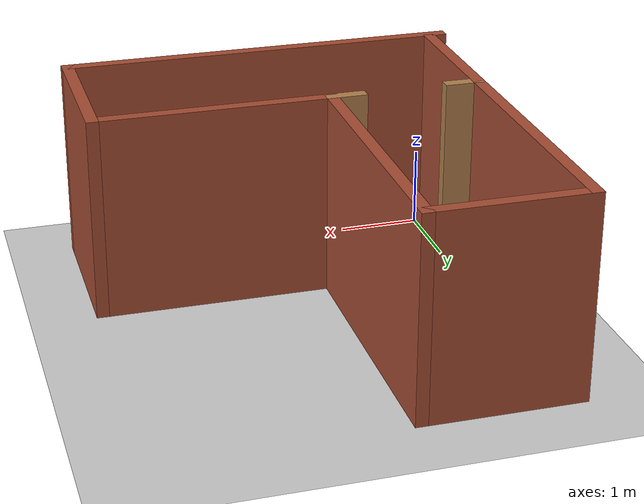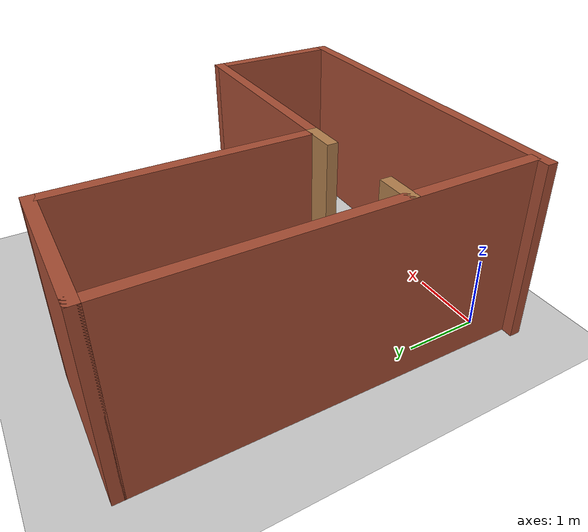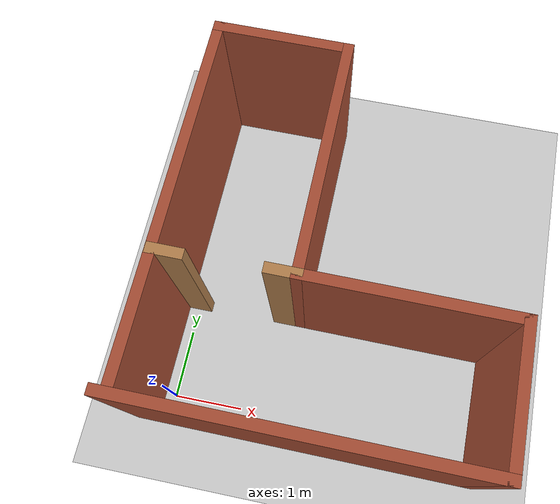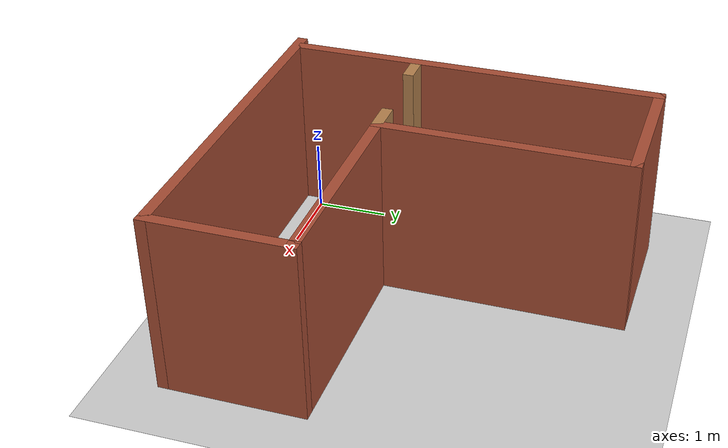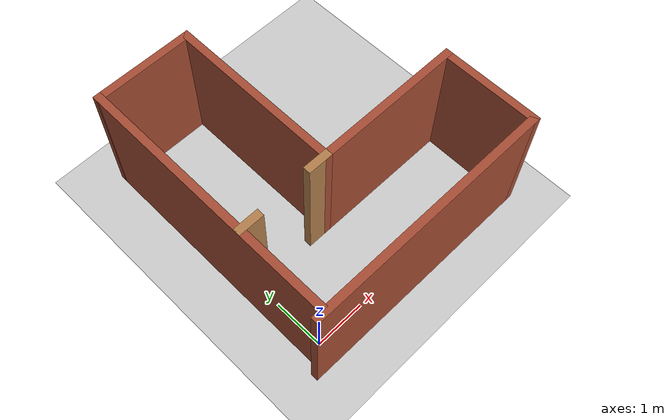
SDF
<sdf version="1.7">
 <world name="default">
  <light name="sun" type="directional">
   <pose>0 0 10 0 -0 0</pose>
   <diffuse>0.8 0.8 0.8 1</diffuse>
   <specular>0.2 0.2 0.2 1</specular>
   <attenuation>
    <range>1000</range>
    <constant>0.9</constant>
    <linear>0.01</linear>
    <quadratic>0.001</quadratic>
   </attenuation>
   <direction>-0.5 0.1 -0.9</direction>
   <spot><inner_angle>0</inner_angle><outer_angle>0</outer_angle><falloff>0</falloff></spot>
  </light>
  <model name="ground_plane">
   <static>1</static>
   <link name="link">
    <collision name="collision">
     <geometry><plane><normal>0 0 1</normal><size>100 100</size></plane></geometry>
     <surface>
      <contact><collide_bitmask>65535</collide_bitmask></contact>
      <friction><ode><mu>100</mu><mu2>50</mu2></ode></friction>
     </surface>
    </collision>
    <visual name="visual">
     <cast_shadows>0</cast_shadows>
     <geometry><plane><normal>0 0 1</normal><size>100 100</size></plane></geometry>
     <material>
      <script><uri>file://media/materials/scripts/gazebo.material</uri><name>Gazebo/Grey</name></script>
     </material>
    </visual>
   </link>
  </model>
  <gravity>0 0 -9.8</gravity>
  <magnetic_field>6e-06 2.3e-05 -4.2e-05</magnetic_field>
  <atmosphere type="adiabatic"/>
  <physics type="ode">
   <max_step_size>0.001</max_step_size>
   <real_time_factor>1</real_time_factor>
   <real_time_update_rate>1000</real_time_update_rate>
  </physics>
  <scene><ambient>0.4 0.4 0.4 1</ambient><background>0.7 0.7 0.7 1</background><shadows>1</shadows></scene>
  <spherical_coordinates>
   <surface_model>EARTH_WGS84</surface_model>
   <latitude_deg>0</latitude_deg>
   <longitude_deg>0</longitude_deg>
   <elevation>0</elevation>
   <heading_deg>0</heading_deg>
  </spherical_coordinates>
  <model name="wall4_new">
   <pose>1.77122 2.24113 0 0 -0 1.56565</pose>
   <link name="Wall_11">
    <collision name="Wall_11_Collision">
     <geometry><box><size>0.5 0.15 2.5</size></box></geometry>
     <pose>0 0 1.25 0 -0 0</pose>
    </collision>
    <visual name="Wall_11_Visual">
     <pose>0 0 1.25 0 -0 0</pose>
     <geometry><box><size>0.5 0.15 2.5</size></box></geometry>
     <material>
      <script><uri>file://media/materials/scripts/gazebo.material</uri><name>Gazebo/Wood</name></script>
      <ambient>1 1 1 1</ambient>
     </material>
     <meta><layer>0</layer></meta>
    </visual>
    <pose>-0.75 0.3225 0 0 -0 1.5708</pose>
   </link>
   <link name="Wall_2">
    <collision name="Wall_2_Collision">
     <geometry><box><size>5.25 0.15 2.5</size></box></geometry>
     <pose>0 0 1.25 0 -0 0</pose>
    </collision>
    <visual name="Wall_2_Visual">
     <pose>0 0 1.25 0 -0 0</pose>
     <geometry><box><size>5.25 0.15 2.5</size></box></geometry>
     <material>
      <script><uri>file://media/materials/scripts/gazebo.material</uri><name>Gazebo/Bricks</name></script>
      <ambient>1 1 1 1</ambient>
     </material>
     <meta><layer>0</layer></meta>
    </visual>
    <pose>0.05 1.9975 0 0 -0 0</pose>
   </link>
   <link name="Wall_3">
    <collision name="Wall_3_Collision">
     <geometry><box><size>2 0.15 2.5</size></box></geometry>
     <pose>0 0 1.25 0 -0 0</pose>
    </collision>
    <visual name="Wall_3_Visual">
     <pose>0 0 1.25 0 -0 0</pose>
     <geometry><box><size>2 0.15 2.5</size></box></geometry>
     <material>
      <script><uri>file://media/materials/scripts/gazebo.material</uri><name>Gazebo/Bricks</name></script>
      <ambient>1 1 1 1</ambient>
     </material>
     <meta><layer>0</layer></meta>
    </visual>
    <pose>2.6 1.0725 0 0 -0 -1.5708</pose>
   </link>
   <link name="Wall_4">
    <collision name="Wall_4_Collision">
     <geometry><box><size>3.5 0.15 2.5</size></box></geometry>
     <pose>0 0 1.25 0 -0 0</pose>
    </collision>
    <visual name="Wall_4_Visual">
     <pose>0 0 1.25 0 -0 0</pose>
     <geometry><box><size>3.5 0.15 2.5</size></box></geometry>
     <material>
      <script><uri>file://media/materials/scripts/gazebo.material</uri><name>Gazebo/Bricks</name></script>
      <ambient>1 1 1 1</ambient>
     </material>
     <meta><layer>0</layer></meta>
    </visual>
    <pose>0.925 0.1475 0 0 -0 3.14159</pose>
   </link>
   <link name="Wall_5">
    <collision name="Wall_5_Collision">
     <geometry><box><size>3 0.15 2.5</size></box></geometry>
     <pose>0 0 1.25 0 -0 0</pose>
    </collision>
    <visual name="Wall_5_Visual">
     <pose>0 0 1.25 0 -0 0</pose>
     <geometry><box><size>3 0.15 2.5</size></box></geometry>
     <material>
      <script><uri>file://media/materials/scripts/gazebo.material</uri><name>Gazebo/Bricks</name></script>
      <ambient>1 1 1 1</ambient>
     </material>
     <meta><layer>0</layer></meta>
    </visual>
    <pose>-0.75 -1.2775 0 0 -0 -1.5708</pose>
   </link>
   <link name="Wall_6">
    <collision name="Wall_6_Collision">
     <geometry><box><size>2 0.15 2.5</size></box></geometry>
     <pose>0 0 1.25 0 -0 0</pose>
    </collision>
    <visual name="Wall_6_Visual">
     <pose>0 0 1.25 0 -0 0</pose>
     <geometry><box><size>2 0.15 2.5</size></box></geometry>
     <material>
      <script><uri>file://media/materials/scripts/gazebo.material</uri><name>Gazebo/Bricks</name></script>
      <ambient>1 1 1 1</ambient>
     </material>
     <meta><layer>0</layer></meta>
    </visual>
    <pose>-1.675 -2.7025 0 0 -0 3.14159</pose>
   </link>
   <link name="Wall_7">
    <collision name="Wall_7_Collision">
     <geometry><box><size>5 0.15 2.5</size></box></geometry>
     <pose>0 0 1.25 0 -0 0</pose>
    </collision>
    <visual name="Wall_7_Visual">
     <pose>0 0 1.25 0 -0 0</pose>
     <geometry><box><size>5 0.15 2.5</size></box></geometry>
     <material>
      <script><uri>file://media/materials/scripts/gazebo.material</uri><name>Gazebo/Bricks</name></script>
      <ambient>1 1 1 1</ambient>
     </material>
     <meta><layer>0</layer></meta>
    </visual>
    <pose>-2.6 -0.2775 0 0 -0 1.5708</pose>
   </link>
   <link name="Wall_9">
    <collision name="Wall_9_Collision">
     <geometry><box><size>0.5 0.15 2.5</size></box></geometry>
     <pose>0 0 1.25 0 -0 0</pose>
    </collision>
    <visual name="Wall_9_Visual">
     <pose>0 0 1.25 0 -0 0</pose>
     <geometry><box><size>0.5 0.15 2.5</size></box></geometry>
     <material>
      <script><uri>file://media/materials/scripts/gazebo.material</uri><name>Gazebo/Wood</name></script>
      <ambient>1 1 1 1</ambient>
     </material>
     <meta><layer>0</layer></meta>
    </visual>
    <pose>-0.78978 1.81869 0 0 -0 -1.5708</pose>
   </link>
   <static>1</static>
  </model>
 </world>
</sdf>
